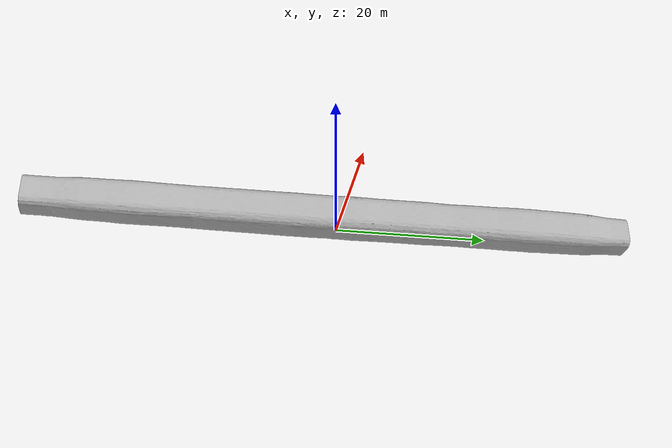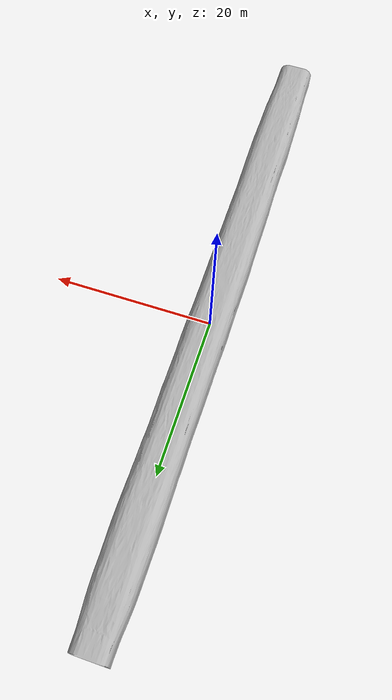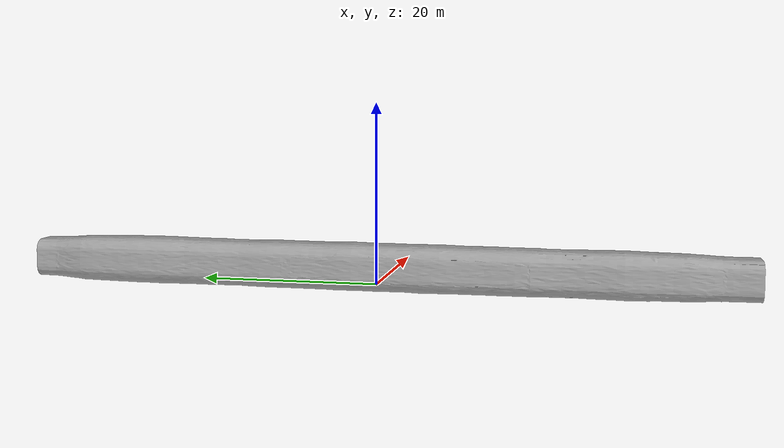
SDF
<?xml version="1.0"?>
<sdf version="1.6">
  <model name="cave_straight_80m">
    <static>true</static>
    <link name="base">
      <pose>0 0 0 0 0 0</pose>
      <collision name="base_collision">
        <pose>0 0 0 0 0 0</pose>
        <geometry>
          <mesh>
            <uri>model://cave_straight_80m/meshes/cave_straight_80m.dae</uri>
          </mesh>
        </geometry>
        <surface>
          <contact>
             <collide_bitmask>0xffff</collide_bitmask>
          </contact>
          <friction>
            <ode>
              <mu>100</mu>
              <mu2>50</mu2>
            </ode>
          </friction>
        </surface>
      </collision>
      <visual name="base_visual">
        <pose>0 0 0 0 0 0</pose>
        <cast_shadows>false</cast_shadows>
        <geometry>
          <mesh>
            <uri>model://cave_straight_80m/meshes/cave_straight_80m.dae</uri>
          </mesh>
        </geometry>
      </visual>
    </link>
  </model>
</sdf>
